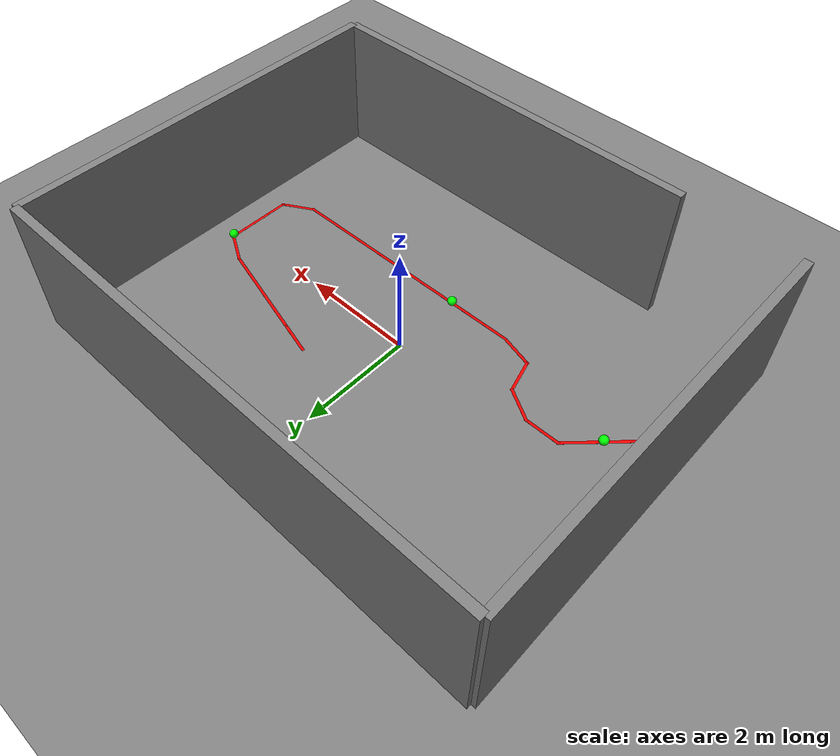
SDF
<?xml version="1.0" ?>
<sdf version='1.8'>
  <world name='my_world'>
    <!-- Ignition Gazebo plugins -->
    <plugin
      filename="ignition-gazebo-physics-system"
      name="ignition::gazebo::systems::Physics">
    </plugin>
    <plugin
      filename="ignition-gazebo-user-commands-system"
      name="ignition::gazebo::systems::UserCommands">
    </plugin>
    <plugin
      filename="ignition-gazebo-scene-broadcaster-system"
      name="ignition::gazebo::systems::SceneBroadcaster">
    </plugin>
    <plugin
      filename="ignition-gazebo-sensors-system"
      name="ignition::gazebo::systems::Sensors">
      <render_engine>ogre2</render_engine>
    </plugin>

    <light name='sun' type='directional'>
      <cast_shadows>1</cast_shadows>
      <pose>0 0 10 0 -0 0</pose>
      <diffuse>0.8 0.8 0.8 1</diffuse>
      <specular>0.2 0.2 0.2 1</specular>
      <direction>-0.5 0.1 -0.9</direction>
    </light>

    <model name='ground_plane'>
      <static>1</static>
      <link name='link'>
        <collision name='collision'>
          <geometry>
            <plane>
              <normal>0 0 1</normal>
              <size>100 100</size>
            </plane>
          </geometry>
          <surface>
            <friction>
              <ode>
                <mu>100</mu>
                <mu2>50</mu2>
              </ode>
            </friction>
          </surface>
        </collision>
        <visual name='visual'>
          <cast_shadows>0</cast_shadows>
          <geometry>
            <plane>
              <normal>0 0 1</normal>
              <size>100 100</size>
            </plane>
          </geometry>
          <material>
            <ambient>0.5 0.5 0.5 1</ambient>
            <diffuse>0.5 0.5 0.5 1</diffuse>
            <specular>0.1 0.1 0.1 1</specular>
          </material>
        </visual>
      </link>
    </model>

    <gravity>0 0 -9.8</gravity>
    <magnetic_field>6e-06 2.3e-05 -4.2e-05</magnetic_field>

    <physics name="1ms" type="ignored">
      <max_step_size>0.001</max_step_size>
      <real_time_factor>1.0</real_time_factor>
    </physics>

    <scene>
      <ambient>0.4 0.4 0.4 1</ambient>
      <background>0.7 0.7 0.7 1</background>
      <shadows>1</shadows>
    </scene>

    <model name='maze'>
      <pose>0 0 0 0 0 0</pose>
      <static>1</static>

      <!-- Bottom Wall Right Part (entrance gap on LEFT side) -->
      <link name='Wall_Bottom_Right'>
        <pose>1.0 -3.5 0 0 0 0</pose>
        <collision name='Wall_Bottom_Right_Collision'>
          <geometry>
            <box>
              <size>7.0 0.15 2.5</size>
            </box>
          </geometry>
          <pose>0 0 1.25 0 0 0</pose>
        </collision>
        <visual name='Wall_Bottom_Right_Visual'>
          <pose>0 0 1.25 0 0 0</pose>
          <geometry>
            <box>
              <size>7.0 0.15 2.5</size>
            </box>
          </geometry>
          <material>
            <ambient>0.5 0.5 0.5 1</ambient>
            <diffuse>0.5 0.5 0.5 1</diffuse>
            <specular>0.1 0.1 0.1 1</specular>
          </material>
        </visual>
      </link>

      <!-- Right Wall -->
      <link name='Wall_Right'>
        <pose>4.5 0 0 0 0 0</pose>
        <collision name='Wall_Right_Collision'>
          <geometry>
            <box>
              <size>0.15 7.0 2.5</size>
            </box>
          </geometry>
          <pose>0 0 1.25 0 0 0</pose>
        </collision>
        <visual name='Wall_Right_Visual'>
          <pose>0 0 1.25 0 0 0</pose>
          <geometry>
            <box>
              <size>0.15 7.0 2.5</size>
            </box>
          </geometry>
          <material>
            <ambient>0.5 0.5 0.5 1</ambient>
            <diffuse>0.5 0.5 0.5 1</diffuse>
            <specular>0.1 0.1 0.1 1</specular>
          </material>
        </visual>
      </link>

      <!-- Top Wall (full wall, no gap) -->
      <link name='Wall_Top'>
        <pose>0 3.5 0 0 0 0</pose>
        <collision name='Wall_Top_Collision'>
          <geometry>
            <box>
              <size>9.0 0.15 2.5</size>
            </box>
          </geometry>
          <pose>0 0 1.25 0 0 0</pose>
        </collision>
        <visual name='Wall_Top_Visual'>
          <pose>0 0 1.25 0 0 0</pose>
          <geometry>
            <box>
              <size>9.0 0.15 2.5</size>
            </box>
          </geometry>
          <material>
            <ambient>0.5 0.5 0.5 1</ambient>
            <diffuse>0.5 0.5 0.5 1</diffuse>
            <specular>0.1 0.1 0.1 1</specular>
          </material>
        </visual>
      </link>

      <!-- Left Wall -->
      <link name='Wall_Left'>
        <pose>-4.5 0 0 0 0 0</pose>
        <collision name='Wall_Left_Collision'>
          <geometry>
            <box>
              <size>0.15 7.0 2.5</size>
            </box>
          </geometry>
          <pose>0 0 1.25 0 0 0</pose>
        </collision>
        <visual name='Wall_Left_Visual'>
          <pose>0 0 1.25 0 0 0</pose>
          <geometry>
            <box>
              <size>0.15 7.0 2.5</size>
            </box>
          </geometry>
          <material>
            <ambient>0.5 0.5 0.5 1</ambient>
            <diffuse>0.5 0.5 0.5 1</diffuse>
            <specular>0.1 0.1 0.1 1</specular>
          </material>
        </visual>
      </link>
    </model>

    <model name='path'>
      <pose>0 0 0 0 0 0</pose>
      <static>1</static>

      <link name='Line_11'>
        <pose>-3.96386 -2.42451 0 0 -0 -1.5708</pose>
        <collision name='Line_11_Collision'>
          <geometry>
            <plane>
              <normal>0 0 1</normal>
              <size>0.05 2.5</size>
            </plane>
          </geometry>
          <pose>0 0 0.0015 0 -0 0</pose>
          <surface>
            <friction>
              <ode>
                <mu>100</mu>
                <mu2>50</mu2>
              </ode>
            </friction>
          </surface>
        </collision>
        <visual name='Line_11_Visual'>
          <pose>0 0 0.0015 0 -0 0</pose>
          <geometry>
            <box>
              <size>2.5 0.05 0.001</size>
            </box>
          </geometry>
          <material>
            <ambient>1 0 0 1</ambient>
            <diffuse>1 0 0 1</diffuse>
            <specular>0.1 0.1 0.1 1</specular>
          </material>
        </visual>
      </link>

      <link name='Line_13'>
        <pose>-3.48386 -0.722009 0 0 -0 0.782787</pose>
        <collision name='Line_13_Collision'>
          <geometry>
            <plane>
              <normal>0 0 1</normal>
              <size>0.05 1.40411</size>
            </plane>
          </geometry>
          <pose>0 0 0.0005 0 -0 0</pose>
          <surface>
            <friction>
              <ode>
                <mu>100</mu>
                <mu2>50</mu2>
              </ode>
            </friction>
          </surface>
        </collision>
        <visual name='Line_13_Visual'>
          <pose>0 0 0.0005 0 -0 0</pose>
          <geometry>
            <box>
              <size>1.40411 0.05 0.001</size>
            </box>
          </geometry>
          <material>
            <ambient>1 0 0 1</ambient>
            <diffuse>1 0 0 1</diffuse>
            <specular>0.1 0.1 0.1 1</specular>
          </material>
        </visual>
      </link>

      <link name='Line_14'>
        <pose>-2.70386 -0.244509 0 0 -0 0</pose>
        <collision name='Line_14_Collision'>
          <geometry>
            <plane>
              <normal>0 0 1</normal>
              <size>0.05 0.65</size>
            </plane>
          </geometry>
          <pose>0 0 0.0005 0 -0 0</pose>
          <surface>
            <friction>
              <ode>
                <mu>100</mu>
                <mu2>50</mu2>
              </ode>
            </friction>
          </surface>
        </collision>
        <visual name='Line_14_Visual'>
          <pose>0 0 0.0005 0 -0 0</pose>
          <geometry>
            <box>
              <size>0.65 0.05 0.001</size>
            </box>
          </geometry>
          <material>
            <ambient>1 0 0 1</ambient>
            <diffuse>1 0 0 1</diffuse>
            <specular>0.1 0.1 0.1 1</specular>
          </material>
        </visual>
      </link>

      <link name='Line_20'>
        <pose>-2.14686 -0.394509 0 0 -0 -0.528316</pose>
        <collision name='Line_20_Collision'>
          <geometry>
            <plane>
              <normal>0 0 1</normal>
              <size>0.05 0.645529</size>
            </plane>
          </geometry>
          <pose>0 0 0.0005 0 -0 0</pose>
          <surface>
            <friction>
              <ode>
                <mu>100</mu>
                <mu2>50</mu2>
              </ode>
            </friction>
          </surface>
        </collision>
        <visual name='Line_20_Visual'>
          <pose>0 0 0.0005 0 -0 0</pose>
          <geometry>
            <box>
              <size>0.645529 0.05 0.001</size>
            </box>
          </geometry>
          <material>
            <ambient>1 0 0 1</ambient>
            <diffuse>1 0 0 1</diffuse>
            <specular>0.1 0.1 0.1 1</specular>
          </material>
        </visual>
      </link>

      <link name='Line_21'>
        <pose>-1.81186 -0.834509 0 0 -0 -1.30805</pose>
        <collision name='Line_21_Collision'>
          <geometry>
            <plane>
              <normal>0 0 1</normal>
              <size>0.05 0.650446</size>
            </plane>
          </geometry>
          <pose>0 0 0.0005 0 -0 0</pose>
          <surface>
            <friction>
              <ode>
                <mu>100</mu>
                <mu2>50</mu2>
              </ode>
            </friction>
          </surface>
        </collision>
        <visual name='Line_21_Visual'>
          <pose>0 0 0.0005 0 -0 0</pose>
          <geometry>
            <box>
              <size>0.650446 0.05 0.001</size>
            </box>
          </geometry>
          <material>
            <ambient>1 0 0 1</ambient>
            <diffuse>1 0 0 1</diffuse>
            <specular>0.1 0.1 0.1 1</specular>
          </material>
        </visual>
      </link>

      <link name='Line_22'>
        <pose>-1.44436 -1.20201 0 0 -0 -0.26157</pose>
        <collision name='Line_22_Collision'>
          <geometry>
            <plane>
              <normal>0 0 1</normal>
              <size>0.05 0.649508</size>
            </plane>
          </geometry>
          <pose>0 0 0.0005 0 -0 0</pose>
          <surface>
            <friction>
              <ode>
                <mu>100</mu>
                <mu2>50</mu2>
              </ode>
            </friction>
          </surface>
        </collision>
        <visual name='Line_22_Visual'>
          <pose>0 0 0.0005 0 -0 0</pose>
          <geometry>
            <box>
              <size>0.649508 0.05 0.001</size>
            </box>
          </geometry>
          <material>
            <ambient>1 0 0 1</ambient>
            <diffuse>1 0 0 1</diffuse>
            <specular>0.1 0.1 0.1 1</specular>
          </material>
        </visual>
      </link>

      <link name='Line_23'>
        <pose>1.14514 -1.27951 0 0 -0 0</pose>
        <collision name='Line_23_Collision'>
          <geometry>
            <plane>
              <normal>0 0 1</normal>
              <size>0.05 4.65006</size>
            </plane>
          </geometry>
          <pose>0 0 0.0005 0 -0 0</pose>
          <surface>
            <friction>
              <ode>
                <mu>100</mu>
                <mu2>50</mu2>
              </ode>
            </friction>
          </surface>
        </collision>
        <visual name='Line_23_Visual'>
          <pose>0 0 0.0005 0 -0 0</pose>
          <geometry>
            <box>
              <size>4.65006 0.05 0.001</size>
            </box>
          </geometry>
          <material>
            <ambient>1 0 0 1</ambient>
            <diffuse>1 0 0 1</diffuse>
            <specular>0.1 0.1 0.1 1</specular>
          </material>
        </visual>
      </link>

      <link name='Line_24'>
        <pose>3.70514 -1.12951 0 0 -0 0.523278</pose>
        <collision name='Line_24_Collision'>
          <geometry>
            <plane>
              <normal>0 0 1</normal>
              <size>0.05 0.649922</size>
            </plane>
          </geometry>
          <pose>0 0 0.0005 0 -0 0</pose>
          <surface>
            <friction>
              <ode>
                <mu>100</mu>
                <mu2>50</mu2>
              </ode>
            </friction>
          </surface>
        </collision>
        <visual name='Line_24_Visual'>
          <pose>0 0 0.0005 0 -0 0</pose>
          <geometry>
            <box>
              <size>0.649922 0.05 0.001</size>
            </box>
          </geometry>
          <material>
            <ambient>1 0 0 1</ambient>
            <diffuse>1 0 0 1</diffuse>
            <specular>0.1 0.1 0.1 1</specular>
          </material>
        </visual>
      </link>

      <link name='Line_25'>
        <pose>3.96514 -0.804509 0 0 -0 1.5708</pose>
        <collision name='Line_25_Collision'>
          <geometry>
            <plane>
              <normal>0 0 1</normal>
              <size>0.05 0.399747</size>
            </plane>
          </geometry>
          <pose>0 0 0.0005 0 -0 0</pose>
          <surface>
            <friction>
              <ode>
                <mu>100</mu>
                <mu2>50</mu2>
              </ode>
            </friction>
          </surface>
        </collision>
        <visual name='Line_25_Visual'>
          <pose>0 0 0.0005 0 -0 0</pose>
          <geometry>
            <box>
              <size>0.399747 0.05 0.001</size>
            </box>
          </geometry>
          <material>
            <ambient>1 0 0 1</ambient>
            <diffuse>1 0 0 1</diffuse>
            <specular>0.1 0.1 0.1 1</specular>
          </material>
        </visual>
      </link>

      <link name='Line_26'>
        <pose>3.96514 -0.204509 0 0 -0 1.5708</pose>
        <collision name='Line_26_Collision'>
          <geometry>
            <plane>
              <normal>0 0 1</normal>
              <size>0.05 0.899747</size>
            </plane>
          </geometry>
          <pose>0 0 0.0005 0 -0 0</pose>
          <surface>
            <friction>
              <ode>
                <mu>100</mu>
                <mu2>50</mu2>
              </ode>
            </friction>
          </surface>
        </collision>
        <visual name='Line_26_Visual'>
          <pose>0 0 0.0005 0 -0 0</pose>
          <geometry>
            <box>
              <size>0.899747 0.05 0.001</size>
            </box>
          </geometry>
          <material>
            <ambient>1 0 0 1</ambient>
            <diffuse>1 0 0 1</diffuse>
            <specular>0.1 0.1 0.1 1</specular>
          </material>
        </visual>
      </link>

      <link name='Line_27'>
        <pose>3.70514 0.370491 0 0 -0 2.61831</pose>
        <collision name='Line_27_Collision'>
          <geometry>
            <plane>
              <normal>0 0 1</normal>
              <size>0.05 0.650158</size>
            </plane>
          </geometry>
          <pose>0 0 0.0005 0 -0 0</pose>
          <surface>
            <friction>
              <ode>
                <mu>100</mu>
                <mu2>50</mu2>
              </ode>
            </friction>
          </surface>
        </collision>
        <visual name='Line_27_Visual'>
          <pose>0 0 0.0005 0 -0 0</pose>
          <geometry>
            <box>
              <size>0.650158 0.05 0.001</size>
            </box>
          </geometry>
          <material>
            <ambient>1 0 0 1</ambient>
            <diffuse>1 0 0 1</diffuse>
            <specular>0.1 0.1 0.1 1</specular>
          </material>
        </visual>
      </link>

      <link name='Line_28'>
        <pose>2.55164 0.759991 0 0 -0 2.8797</pose>
        <collision name='Line_28_Collision'>
          <geometry>
            <plane>
              <normal>0 0 1</normal>
              <size>0.05 1.89988</size>
            </plane>
          </geometry>
          <pose>0 0 0.0005 0 -0 0</pose>
          <surface>
            <friction>
              <ode>
                <mu>100</mu>
                <mu2>50</mu2>
              </ode>
            </friction>
          </surface>
        </collision>
        <visual name='Line_28_Visual'>
          <pose>0 0 0.0005 0 -0 0</pose>
          <geometry>
            <box>
              <size>1.89988 0.05 0.001</size>
            </box>
          </geometry>
          <material>
            <ambient>1 0 0 1</ambient>
            <diffuse>1 0 0 1</diffuse>
            <specular>0.1 0.1 0.1 1</specular>
          </material>
        </visual>
      </link>

      <link name='Line_29'>
        <pose>1.36864 1.07699 0 0 -0 2.88002</pose>
        <collision name='Line_29_Collision'>
          <geometry>
            <plane>
              <normal>0 0 1</normal>
              <size>0.05 0.649797</size>
            </plane>
          </geometry>
          <pose>0 0 0.0005 0 -0 0</pose>
          <surface>
            <friction>
              <ode>
                <mu>100</mu>
                <mu2>50</mu2>
              </ode>
            </friction>
          </surface>
        </collision>
        <visual name='Line_29_Visual'>
          <pose>0 0 0.0005 0 -0 0</pose>
          <geometry>
            <box>
              <size>0.649797 0.05 0.001</size>
            </box>
          </geometry>
          <material>
            <ambient>1 0 0 1</ambient>
            <diffuse>1 0 0 1</diffuse>
            <specular>0.1 0.1 0.1 1</specular>
          </material>
        </visual>
      </link>

      <!-- Green Point 1 - NO COLLISION (on Line_23) -->
      <link name='GreenPoint_1'>
        <pose>0.0 -1.27951 0.05 0 0 0</pose>
        <visual name='gp1_visual'>
          <geometry>
            <sphere>
              <radius>0.08</radius>
            </sphere>
          </geometry>
          <material>
            <ambient>0 1 0 1</ambient>
            <diffuse>0 1 0 1</diffuse>
            <specular>0.5 0.5 0.5 1</specular>
            <emissive>0 0.3 0 1</emissive>
          </material>
        </visual>
      </link>

      <!-- Green Point 2 - NO COLLISION (on Line_26) -->
      <link name='GreenPoint_2'>
        <pose>3.96514 0.2 0.05 0 0 0</pose>
        <visual name='gp2_visual'>
          <geometry>
            <sphere>
              <radius>0.08</radius>
            </sphere>
          </geometry>
          <material>
            <ambient>0 1 0 1</ambient>
            <diffuse>0 1 0 1</diffuse>
            <specular>0.5 0.5 0.5 1</specular>
            <emissive>0 0.3 0 1</emissive>
          </material>
        </visual>
      </link>

      <!-- Green Point 3 - NO COLLISION (on Line_13) -->
      <link name='GreenPoint_3'>
        <pose>-3.48386 -0.722009 0.05 0 0 0</pose>
        <visual name='gp3_visual'>
          <geometry>
            <sphere>
              <radius>0.08</radius>
            </sphere>
          </geometry>
          <material>
            <ambient>0 1 0 1</ambient>
            <diffuse>0 1 0 1</diffuse>
            <specular>0.5 0.5 0.5 1</specular>
            <emissive>0 0.3 0 1</emissive>
          </material>
        </visual>
      </link>
    </model>

    <gui fullscreen='0'>
      <camera name='user_camera'>
        <pose>-5.52332 -9.29293 7.74 -0 1.12764 1.6002</pose>
        <view_controller>orbit</view_controller>
        <projection_type>perspective</projection_type>
      </camera>
    </gui>

  </world>
</sdf>
